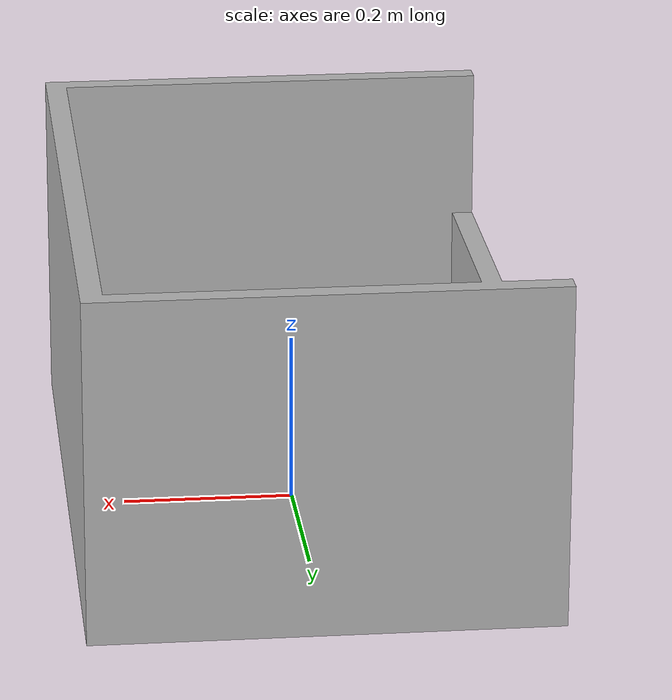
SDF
<?xml version='1.0'?>
<sdf version="1.4">

<model name="container">
  <link name="link">
    <inertial>
      <mass>15</mass>
      <inertia>
        <ixx>7.247</ixx>
        <ixy>0.0</ixy>
        <ixz>-0.333</ixz>
        <iyy>3.718</iyy>
        <iyz>0.0</iyz>
        <izz>9.10</izz>
      </inertia>
    </inertial>
    <visual name="visual">
      <geometry>
        <mesh>
          <uri>model://container/container.stl</uri>
          <scale>0.001 0.001 0.001</scale>
        </mesh>
      </geometry>
    </visual>
    <collision name="collision">
      <geometry>
        <mesh>
          <uri>model://container/container.stl</uri>
          <scale>0.001 0.001 0.001</scale>
        </mesh>
      </geometry>
    </collision>
  </link>
</model>

</sdf>
